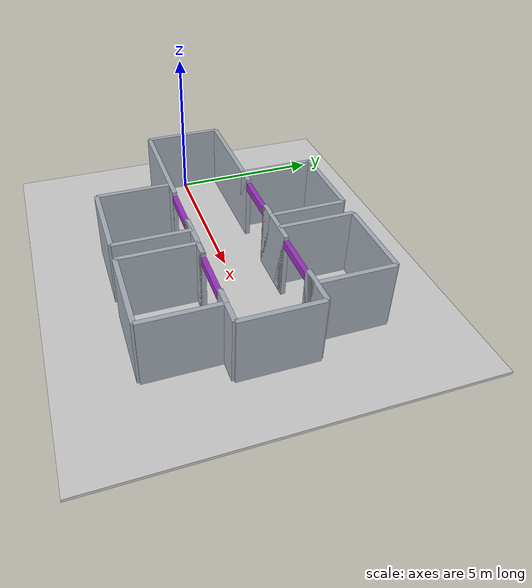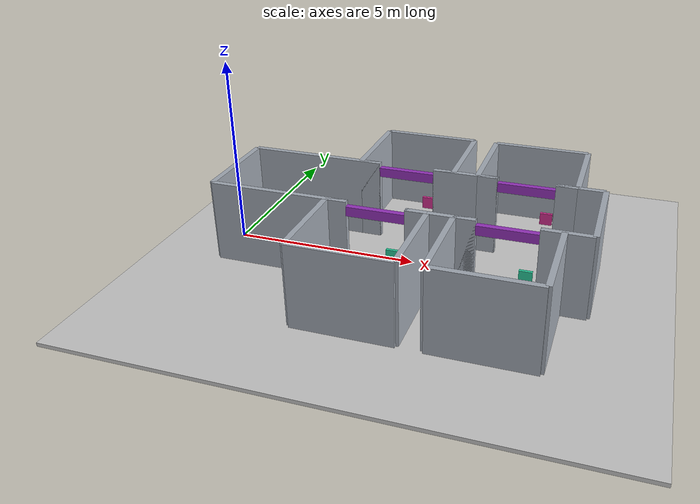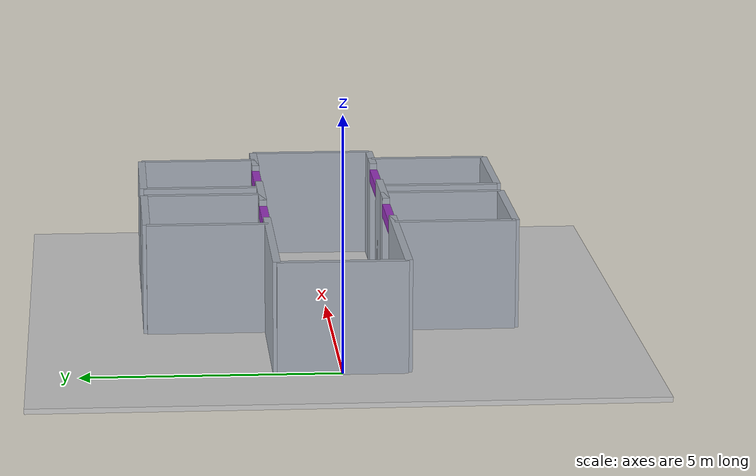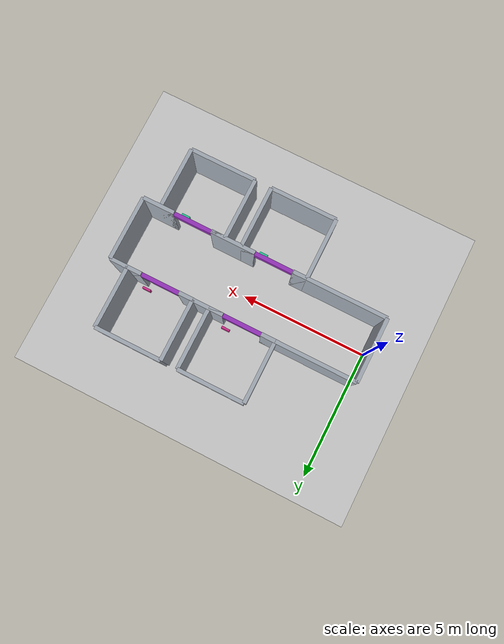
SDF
<sdf version="1.9">
  <world name="default">
    <plugin filename="gz-sim-physics-system" name="gz::sim::systems::Physics" />
    <plugin filename="gz-sim-user-commands-system" name="gz::sim::systems::UserCommands" />
    <plugin filename="gz-sim-sensors-system" name="gz::sim::systems::Sensors">
      <render_engine>ogre2</render_engine>
    </plugin>
    <plugin filename="gz-sim-imu-system" name="gz::sim::systems::Imu" />
    <plugin filename="gz-sim-contact-system" name="gz::sim::systems::Contact" />
    <physics name="3ms" type="ode">
      <max_step_size>0.003</max_step_size>
      <real_time_factor>1</real_time_factor>
    </physics>
    <light name="sun" type="directional">
      <pose>0 0 10 0 0 0</pose>
      <diffuse>0.9 0.9 0.9 1</diffuse>
      <direction>-0.5 0.1 -0.9</direction>
    </light>
    <model name="ground_plane">
      <static>true</static>
      <pose>4.85 0 -0.05 0 0 0</pose>
      <link name="body">
        <collision name="collision">
          <geometry>
            <box>
              <size>13.7 12 0.1</size>
            </box>
          </geometry>
        </collision>
        <visual name="visual">
          <geometry>
            <box>
              <size>13.7 12 0.1</size>
            </box>
          </geometry>
          <material>
            <ambient>0.8 0.8 0.8 1</ambient>
            <diffuse>0.8 0.8 0.8 1</diffuse>
          </material>
        </visual>
      </link>
    </model>
    <model name="start_wall">
      <static>true</static>
      <pose>0 0 1.1 0 0 0</pose>
      <link name="body">
        <collision name="collision">
          <geometry>
            <box>
              <size>0.15 2.5 2.2</size>
            </box>
          </geometry>
        </collision>
        <visual name="visual">
          <geometry>
            <box>
              <size>0.15 2.5 2.2</size>
            </box>
          </geometry>
          <material>
            <ambient>0.65 0.68 0.72 1</ambient>
            <diffuse>0.65 0.68 0.72 1</diffuse>
          </material>
        </visual>
      </link>
    </model>
    <model name="end_wall">
      <static>true</static>
      <pose>9.7 0 1.1 0 0 0</pose>
      <link name="body">
        <collision name="collision">
          <geometry>
            <box>
              <size>0.15 2.5 2.2</size>
            </box>
          </geometry>
        </collision>
        <visual name="visual">
          <geometry>
            <box>
              <size>0.15 2.5 2.2</size>
            </box>
          </geometry>
          <material>
            <ambient>0.65 0.68 0.72 1</ambient>
            <diffuse>0.65 0.68 0.72 1</diffuse>
          </material>
        </visual>
      </link>
    </model>
    <model name="hall_-1_1">
      <static>true</static>
      <pose>1.85 -1.25 1.1 0 0 0</pose>
      <link name="body">
        <collision name="collision">
          <geometry>
            <box>
              <size>3.7 0.15 2.2</size>
            </box>
          </geometry>
        </collision>
        <visual name="visual">
          <geometry>
            <box>
              <size>3.7 0.15 2.2</size>
            </box>
          </geometry>
          <material>
            <ambient>0.65 0.68 0.72 1</ambient>
            <diffuse>0.65 0.68 0.72 1</diffuse>
          </material>
        </visual>
      </link>
    </model>
    <model name="room_-1_1_-1">
      <static>true</static>
      <pose>3.1500000000000004 -2.45 1.1 0 0 0</pose>
      <link name="body">
        <collision name="collision">
          <geometry>
            <box>
              <size>0.15 2.4 2.2</size>
            </box>
          </geometry>
        </collision>
        <visual name="visual">
          <geometry>
            <box>
              <size>0.15 2.4 2.2</size>
            </box>
          </geometry>
          <material>
            <ambient>0.65 0.68 0.72 1</ambient>
            <diffuse>0.65 0.68 0.72 1</diffuse>
          </material>
        </visual>
      </link>
    </model>
    <model name="room_-1_1_1">
      <static>true</static>
      <pose>5.75 -2.45 1.1 0 0 0</pose>
      <link name="body">
        <collision name="collision">
          <geometry>
            <box>
              <size>0.15 2.4 2.2</size>
            </box>
          </geometry>
        </collision>
        <visual name="visual">
          <geometry>
            <box>
              <size>0.15 2.4 2.2</size>
            </box>
          </geometry>
          <material>
            <ambient>0.65 0.68 0.72 1</ambient>
            <diffuse>0.65 0.68 0.72 1</diffuse>
          </material>
        </visual>
      </link>
    </model>
    <model name="room_end_-1_1">
      <static>true</static>
      <pose>4.45 -3.65 1.1 0 0 0</pose>
      <link name="body">
        <collision name="collision">
          <geometry>
            <box>
              <size>2.6 0.15 2.2</size>
            </box>
          </geometry>
        </collision>
        <visual name="visual">
          <geometry>
            <box>
              <size>2.6 0.15 2.2</size>
            </box>
          </geometry>
          <material>
            <ambient>0.65 0.68 0.72 1</ambient>
            <diffuse>0.65 0.68 0.72 1</diffuse>
          </material>
        </visual>
      </link>
    </model>
    <model name="jamb_-1_1_-1">
      <static>true</static>
      <pose>3.4250000000000003 -1.25 1.1 0 0 0</pose>
      <link name="body">
        <collision name="collision">
          <geometry>
            <box>
              <size>0.55 0.15 2.2</size>
            </box>
          </geometry>
        </collision>
        <visual name="visual">
          <geometry>
            <box>
              <size>0.55 0.15 2.2</size>
            </box>
          </geometry>
          <material>
            <ambient>0.65 0.68 0.72 1</ambient>
            <diffuse>0.65 0.68 0.72 1</diffuse>
          </material>
        </visual>
      </link>
    </model>
    <model name="jamb_-1_1_1">
      <static>true</static>
      <pose>5.475 -1.25 1.1 0 0 0</pose>
      <link name="body">
        <collision name="collision">
          <geometry>
            <box>
              <size>0.55 0.15 2.2</size>
            </box>
          </geometry>
        </collision>
        <visual name="visual">
          <geometry>
            <box>
              <size>0.55 0.15 2.2</size>
            </box>
          </geometry>
          <material>
            <ambient>0.65 0.68 0.72 1</ambient>
            <diffuse>0.65 0.68 0.72 1</diffuse>
          </material>
        </visual>
      </link>
    </model>
    <model name="hall_-1_2">
      <static>true</static>
      <pose>6.075 -1.25 1.1 0 0 0</pose>
      <link name="body">
        <collision name="collision">
          <geometry>
            <box>
              <size>1.75 0.15 2.2</size>
            </box>
          </geometry>
        </collision>
        <visual name="visual">
          <geometry>
            <box>
              <size>1.75 0.15 2.2</size>
            </box>
          </geometry>
          <material>
            <ambient>0.65 0.68 0.72 1</ambient>
            <diffuse>0.65 0.68 0.72 1</diffuse>
          </material>
        </visual>
      </link>
    </model>
    <model name="room_-1_2_-1">
      <static>true</static>
      <pose>6.4 -2.45 1.1 0 0 0</pose>
      <link name="body">
        <collision name="collision">
          <geometry>
            <box>
              <size>0.15 2.4 2.2</size>
            </box>
          </geometry>
        </collision>
        <visual name="visual">
          <geometry>
            <box>
              <size>0.15 2.4 2.2</size>
            </box>
          </geometry>
          <material>
            <ambient>0.65 0.68 0.72 1</ambient>
            <diffuse>0.65 0.68 0.72 1</diffuse>
          </material>
        </visual>
      </link>
    </model>
    <model name="room_-1_2_1">
      <static>true</static>
      <pose>9.0 -2.45 1.1 0 0 0</pose>
      <link name="body">
        <collision name="collision">
          <geometry>
            <box>
              <size>0.15 2.4 2.2</size>
            </box>
          </geometry>
        </collision>
        <visual name="visual">
          <geometry>
            <box>
              <size>0.15 2.4 2.2</size>
            </box>
          </geometry>
          <material>
            <ambient>0.65 0.68 0.72 1</ambient>
            <diffuse>0.65 0.68 0.72 1</diffuse>
          </material>
        </visual>
      </link>
    </model>
    <model name="room_end_-1_2">
      <static>true</static>
      <pose>7.7 -3.65 1.1 0 0 0</pose>
      <link name="body">
        <collision name="collision">
          <geometry>
            <box>
              <size>2.6 0.15 2.2</size>
            </box>
          </geometry>
        </collision>
        <visual name="visual">
          <geometry>
            <box>
              <size>2.6 0.15 2.2</size>
            </box>
          </geometry>
          <material>
            <ambient>0.65 0.68 0.72 1</ambient>
            <diffuse>0.65 0.68 0.72 1</diffuse>
          </material>
        </visual>
      </link>
    </model>
    <model name="jamb_-1_2_-1">
      <static>true</static>
      <pose>6.675000000000001 -1.25 1.1 0 0 0</pose>
      <link name="body">
        <collision name="collision">
          <geometry>
            <box>
              <size>0.55 0.15 2.2</size>
            </box>
          </geometry>
        </collision>
        <visual name="visual">
          <geometry>
            <box>
              <size>0.55 0.15 2.2</size>
            </box>
          </geometry>
          <material>
            <ambient>0.65 0.68 0.72 1</ambient>
            <diffuse>0.65 0.68 0.72 1</diffuse>
          </material>
        </visual>
      </link>
    </model>
    <model name="jamb_-1_2_1">
      <static>true</static>
      <pose>8.725 -1.25 1.1 0 0 0</pose>
      <link name="body">
        <collision name="collision">
          <geometry>
            <box>
              <size>0.55 0.15 2.2</size>
            </box>
          </geometry>
        </collision>
        <visual name="visual">
          <geometry>
            <box>
              <size>0.55 0.15 2.2</size>
            </box>
          </geometry>
          <material>
            <ambient>0.65 0.68 0.72 1</ambient>
            <diffuse>0.65 0.68 0.72 1</diffuse>
          </material>
        </visual>
      </link>
    </model>
    <model name="hall_end_-1">
      <static>true</static>
      <pose>9.075 -1.25 1.1 0 0 0</pose>
      <link name="body">
        <collision name="collision">
          <geometry>
            <box>
              <size>1.25 0.15 2.2</size>
            </box>
          </geometry>
        </collision>
        <visual name="visual">
          <geometry>
            <box>
              <size>1.25 0.15 2.2</size>
            </box>
          </geometry>
          <material>
            <ambient>0.65 0.68 0.72 1</ambient>
            <diffuse>0.65 0.68 0.72 1</diffuse>
          </material>
        </visual>
      </link>
    </model>
    <model name="hall_1_1">
      <static>true</static>
      <pose>1.85 1.25 1.1 0 0 0</pose>
      <link name="body">
        <collision name="collision">
          <geometry>
            <box>
              <size>3.7 0.15 2.2</size>
            </box>
          </geometry>
        </collision>
        <visual name="visual">
          <geometry>
            <box>
              <size>3.7 0.15 2.2</size>
            </box>
          </geometry>
          <material>
            <ambient>0.65 0.68 0.72 1</ambient>
            <diffuse>0.65 0.68 0.72 1</diffuse>
          </material>
        </visual>
      </link>
    </model>
    <model name="room_1_1_-1">
      <static>true</static>
      <pose>3.1500000000000004 2.45 1.1 0 0 0</pose>
      <link name="body">
        <collision name="collision">
          <geometry>
            <box>
              <size>0.15 2.4 2.2</size>
            </box>
          </geometry>
        </collision>
        <visual name="visual">
          <geometry>
            <box>
              <size>0.15 2.4 2.2</size>
            </box>
          </geometry>
          <material>
            <ambient>0.65 0.68 0.72 1</ambient>
            <diffuse>0.65 0.68 0.72 1</diffuse>
          </material>
        </visual>
      </link>
    </model>
    <model name="room_1_1_1">
      <static>true</static>
      <pose>5.75 2.45 1.1 0 0 0</pose>
      <link name="body">
        <collision name="collision">
          <geometry>
            <box>
              <size>0.15 2.4 2.2</size>
            </box>
          </geometry>
        </collision>
        <visual name="visual">
          <geometry>
            <box>
              <size>0.15 2.4 2.2</size>
            </box>
          </geometry>
          <material>
            <ambient>0.65 0.68 0.72 1</ambient>
            <diffuse>0.65 0.68 0.72 1</diffuse>
          </material>
        </visual>
      </link>
    </model>
    <model name="room_end_1_1">
      <static>true</static>
      <pose>4.45 3.65 1.1 0 0 0</pose>
      <link name="body">
        <collision name="collision">
          <geometry>
            <box>
              <size>2.6 0.15 2.2</size>
            </box>
          </geometry>
        </collision>
        <visual name="visual">
          <geometry>
            <box>
              <size>2.6 0.15 2.2</size>
            </box>
          </geometry>
          <material>
            <ambient>0.65 0.68 0.72 1</ambient>
            <diffuse>0.65 0.68 0.72 1</diffuse>
          </material>
        </visual>
      </link>
    </model>
    <model name="jamb_1_1_-1">
      <static>true</static>
      <pose>3.4250000000000003 1.25 1.1 0 0 0</pose>
      <link name="body">
        <collision name="collision">
          <geometry>
            <box>
              <size>0.55 0.15 2.2</size>
            </box>
          </geometry>
        </collision>
        <visual name="visual">
          <geometry>
            <box>
              <size>0.55 0.15 2.2</size>
            </box>
          </geometry>
          <material>
            <ambient>0.65 0.68 0.72 1</ambient>
            <diffuse>0.65 0.68 0.72 1</diffuse>
          </material>
        </visual>
      </link>
    </model>
    <model name="jamb_1_1_1">
      <static>true</static>
      <pose>5.475 1.25 1.1 0 0 0</pose>
      <link name="body">
        <collision name="collision">
          <geometry>
            <box>
              <size>0.55 0.15 2.2</size>
            </box>
          </geometry>
        </collision>
        <visual name="visual">
          <geometry>
            <box>
              <size>0.55 0.15 2.2</size>
            </box>
          </geometry>
          <material>
            <ambient>0.65 0.68 0.72 1</ambient>
            <diffuse>0.65 0.68 0.72 1</diffuse>
          </material>
        </visual>
      </link>
    </model>
    <model name="hall_1_2">
      <static>true</static>
      <pose>6.075 1.25 1.1 0 0 0</pose>
      <link name="body">
        <collision name="collision">
          <geometry>
            <box>
              <size>1.75 0.15 2.2</size>
            </box>
          </geometry>
        </collision>
        <visual name="visual">
          <geometry>
            <box>
              <size>1.75 0.15 2.2</size>
            </box>
          </geometry>
          <material>
            <ambient>0.65 0.68 0.72 1</ambient>
            <diffuse>0.65 0.68 0.72 1</diffuse>
          </material>
        </visual>
      </link>
    </model>
    <model name="room_1_2_-1">
      <static>true</static>
      <pose>6.4 2.45 1.1 0 0 0</pose>
      <link name="body">
        <collision name="collision">
          <geometry>
            <box>
              <size>0.15 2.4 2.2</size>
            </box>
          </geometry>
        </collision>
        <visual name="visual">
          <geometry>
            <box>
              <size>0.15 2.4 2.2</size>
            </box>
          </geometry>
          <material>
            <ambient>0.65 0.68 0.72 1</ambient>
            <diffuse>0.65 0.68 0.72 1</diffuse>
          </material>
        </visual>
      </link>
    </model>
    <model name="room_1_2_1">
      <static>true</static>
      <pose>9.0 2.45 1.1 0 0 0</pose>
      <link name="body">
        <collision name="collision">
          <geometry>
            <box>
              <size>0.15 2.4 2.2</size>
            </box>
          </geometry>
        </collision>
        <visual name="visual">
          <geometry>
            <box>
              <size>0.15 2.4 2.2</size>
            </box>
          </geometry>
          <material>
            <ambient>0.65 0.68 0.72 1</ambient>
            <diffuse>0.65 0.68 0.72 1</diffuse>
          </material>
        </visual>
      </link>
    </model>
    <model name="room_end_1_2">
      <static>true</static>
      <pose>7.7 3.65 1.1 0 0 0</pose>
      <link name="body">
        <collision name="collision">
          <geometry>
            <box>
              <size>2.6 0.15 2.2</size>
            </box>
          </geometry>
        </collision>
        <visual name="visual">
          <geometry>
            <box>
              <size>2.6 0.15 2.2</size>
            </box>
          </geometry>
          <material>
            <ambient>0.65 0.68 0.72 1</ambient>
            <diffuse>0.65 0.68 0.72 1</diffuse>
          </material>
        </visual>
      </link>
    </model>
    <model name="jamb_1_2_-1">
      <static>true</static>
      <pose>6.675000000000001 1.25 1.1 0 0 0</pose>
      <link name="body">
        <collision name="collision">
          <geometry>
            <box>
              <size>0.55 0.15 2.2</size>
            </box>
          </geometry>
        </collision>
        <visual name="visual">
          <geometry>
            <box>
              <size>0.55 0.15 2.2</size>
            </box>
          </geometry>
          <material>
            <ambient>0.65 0.68 0.72 1</ambient>
            <diffuse>0.65 0.68 0.72 1</diffuse>
          </material>
        </visual>
      </link>
    </model>
    <model name="jamb_1_2_1">
      <static>true</static>
      <pose>8.725 1.25 1.1 0 0 0</pose>
      <link name="body">
        <collision name="collision">
          <geometry>
            <box>
              <size>0.55 0.15 2.2</size>
            </box>
          </geometry>
        </collision>
        <visual name="visual">
          <geometry>
            <box>
              <size>0.55 0.15 2.2</size>
            </box>
          </geometry>
          <material>
            <ambient>0.65 0.68 0.72 1</ambient>
            <diffuse>0.65 0.68 0.72 1</diffuse>
          </material>
        </visual>
      </link>
    </model>
    <model name="hall_end_1">
      <static>true</static>
      <pose>9.075 1.25 1.1 0 0 0</pose>
      <link name="body">
        <collision name="collision">
          <geometry>
            <box>
              <size>1.25 0.15 2.2</size>
            </box>
          </geometry>
        </collision>
        <visual name="visual">
          <geometry>
            <box>
              <size>1.25 0.15 2.2</size>
            </box>
          </geometry>
          <material>
            <ambient>0.65 0.68 0.72 1</ambient>
            <diffuse>0.65 0.68 0.72 1</diffuse>
          </material>
        </visual>
      </link>
    </model>
    <model name="r3geo_base_r011_right_1_lintel">
      <static>true</static>
      <pose>4.45 -1.25 1.95 0 0 0</pose>
      <link name="body">
        <collision name="collision">
          <geometry>
            <box>
              <size>1.5 0.16 0.25</size>
            </box>
          </geometry>
        </collision>
        <visual name="visual">
          <geometry>
            <box>
              <size>1.5 0.16 0.25</size>
            </box>
          </geometry>
          <material>
            <ambient>0.6 0.2 0.75 1</ambient>
            <diffuse>0.6 0.2 0.75 1</diffuse>
          </material>
        </visual>
      </link>
    </model>
    <model name="r3geo_base_r011_right_1_entrance_sign">
      <static>true</static>
      <pose>4.98 -1.55 1.05 0 0 0</pose>
      <link name="body">
        <visual name="visual">
          <geometry>
            <box>
              <size>0.32 0.08 0.32</size>
            </box>
          </geometry>
          <material>
            <ambient>0.16 0.8 0.61 1</ambient>
            <diffuse>0.16 0.8 0.61 1</diffuse>
          </material>
        </visual>
      </link>
    </model>
    <model name="r3geo_base_r011_right_2_lintel">
      <static>true</static>
      <pose>7.7 -1.25 1.95 0 0 0</pose>
      <link name="body">
        <collision name="collision">
          <geometry>
            <box>
              <size>1.5 0.16 0.25</size>
            </box>
          </geometry>
        </collision>
        <visual name="visual">
          <geometry>
            <box>
              <size>1.5 0.16 0.25</size>
            </box>
          </geometry>
          <material>
            <ambient>0.6 0.2 0.75 1</ambient>
            <diffuse>0.6 0.2 0.75 1</diffuse>
          </material>
        </visual>
      </link>
    </model>
    <model name="r3geo_base_r011_right_2_entrance_sign">
      <static>true</static>
      <pose>8.23 -1.55 1.05 0 0 0</pose>
      <link name="body">
        <visual name="visual">
          <geometry>
            <box>
              <size>0.32 0.08 0.32</size>
            </box>
          </geometry>
          <material>
            <ambient>0.16 0.8 0.61 1</ambient>
            <diffuse>0.16 0.8 0.61 1</diffuse>
          </material>
        </visual>
      </link>
    </model>
    <model name="r3geo_base_r011_left_1_lintel">
      <static>true</static>
      <pose>4.45 1.25 1.95 0 0 0</pose>
      <link name="body">
        <collision name="collision">
          <geometry>
            <box>
              <size>1.5 0.16 0.25</size>
            </box>
          </geometry>
        </collision>
        <visual name="visual">
          <geometry>
            <box>
              <size>1.5 0.16 0.25</size>
            </box>
          </geometry>
          <material>
            <ambient>0.6 0.2 0.75 1</ambient>
            <diffuse>0.6 0.2 0.75 1</diffuse>
          </material>
        </visual>
      </link>
    </model>
    <model name="r3geo_base_r011_left_1_entrance_sign">
      <static>true</static>
      <pose>4.98 1.55 1.05 0 0 0</pose>
      <link name="body">
        <visual name="visual">
          <geometry>
            <box>
              <size>0.32 0.08 0.32</size>
            </box>
          </geometry>
          <material>
            <ambient>0.84 0.18 0.57 1</ambient>
            <diffuse>0.84 0.18 0.57 1</diffuse>
          </material>
        </visual>
      </link>
    </model>
    <model name="r3geo_base_r011_left_2_lintel">
      <static>true</static>
      <pose>7.7 1.25 1.95 0 0 0</pose>
      <link name="body">
        <collision name="collision">
          <geometry>
            <box>
              <size>1.5 0.16 0.25</size>
            </box>
          </geometry>
        </collision>
        <visual name="visual">
          <geometry>
            <box>
              <size>1.5 0.16 0.25</size>
            </box>
          </geometry>
          <material>
            <ambient>0.6 0.2 0.75 1</ambient>
            <diffuse>0.6 0.2 0.75 1</diffuse>
          </material>
        </visual>
      </link>
    </model>
    <model name="r3geo_base_r011_left_2_entrance_sign">
      <static>true</static>
      <pose>8.23 1.55 1.05 0 0 0</pose>
      <link name="body">
        <visual name="visual">
          <geometry>
            <box>
              <size>0.32 0.08 0.32</size>
            </box>
          </geometry>
          <material>
            <ambient>0.84 0.18 0.57 1</ambient>
            <diffuse>0.84 0.18 0.57 1</diffuse>
          </material>
        </visual>
      </link>
    </model>
  </world>
</sdf>
